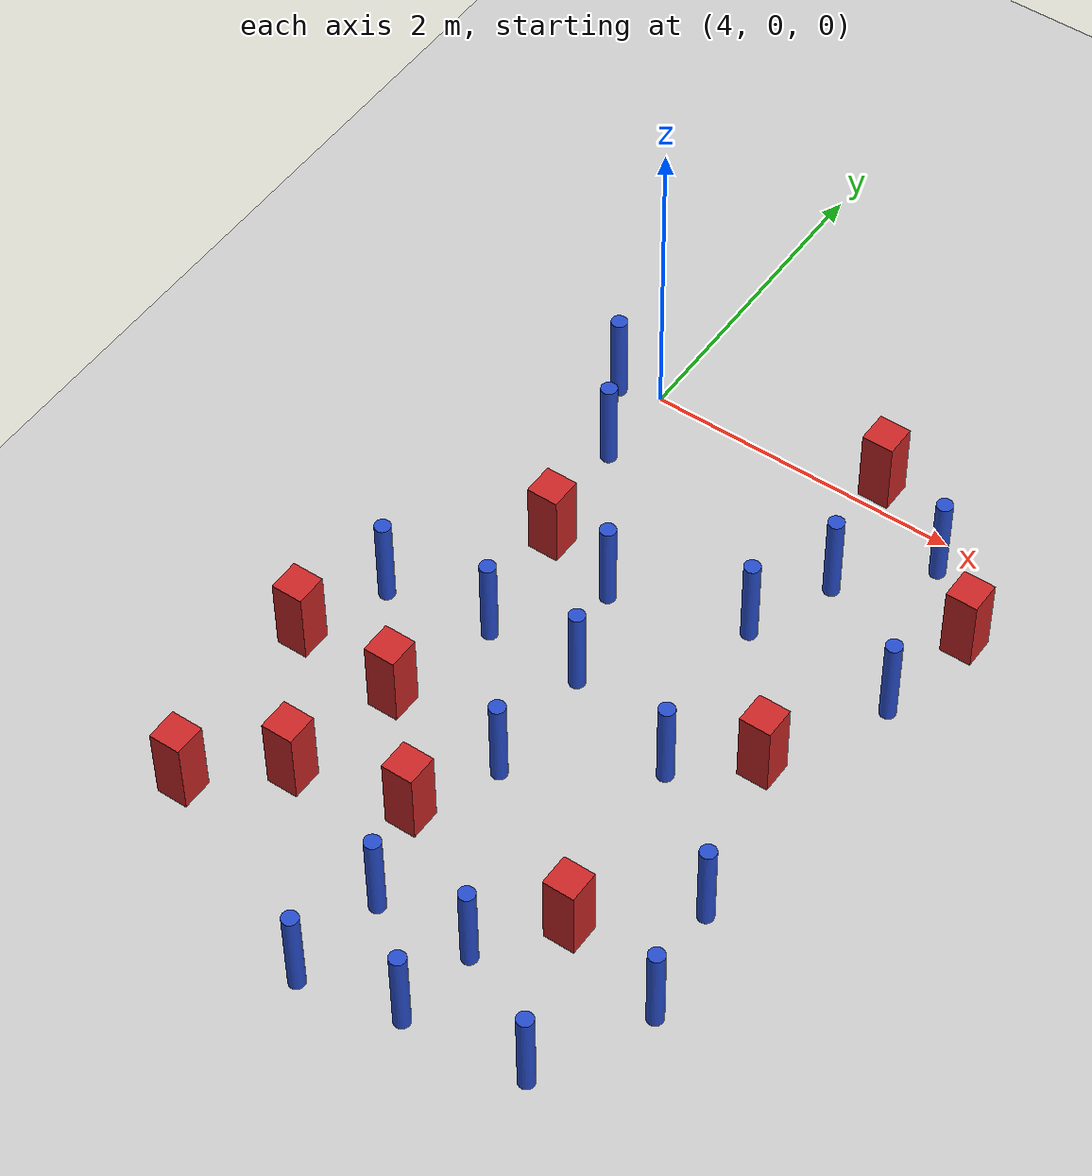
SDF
<sdf version="1.6">
 <world name="default">
  <model name="ground_plane">
   <static>1</static>
   <link name="link">
    <collision name="collision">
     <geometry><plane><normal>0 0 1</normal><size>100 100</size></plane></geometry>
     <surface><friction><ode><mu>100</mu><mu2>50</mu2></ode></friction></surface>
    </collision>
    <visual name="visual">
     <cast_shadows>0</cast_shadows>
     <geometry><plane><normal>0 0 1</normal><size>100 100</size></plane></geometry>
     <material>
      <ambient>1.0 1.0 1.0 1.0</ambient>
      <diffuse>0.8 0.8 0.8 1.0</diffuse>
      <specular>0.01 0.01 0.01 1.000000</specular>
     </material>
    </visual>
   </link>
  </model>
  <model name="pole_obstacle18">
   <static>true</static>
   <pose>4.81392823287 -3.89418730835 7.38925637345e-09 -8.47170692798e-08 1.24976764937e-08 -1.74513093023e-07</pose>
   <link name="link">
    <pose>0 0 0.3 0 -0 0</pose>
    <inertial>
     <mass>1</mass>
     <inertia><ixx>0.145833</ixx><ixy>0</ixy><ixz>0</ixz><iyy>0.145833</iyy><iyz>0</iyz><izz>0.125</izz></inertia>
    </inertial>
    <collision name="collision">
     <geometry><cylinder><radius>0.05</radius><length>.6</length></cylinder></geometry>
    </collision>
    <visual name="visual">
     <geometry><cylinder><radius>0.05</radius><length>.6</length></cylinder></geometry>
     <material>
      <script><name>Gazebo/Blue</name><uri>file://media/materials/scripts/gazebo.material</uri></script>
     </material>
    </visual>
   </link>
  </model>
  <model name="pole_obstacle28">
   <static>true</static>
   <pose>6.43142556251 -3.62551673232 7.38925637345e-09 -8.47170692798e-08 1.24976764937e-08 -1.74513093023e-07</pose>
   <link name="link">
    <pose>0 0 0.3 0 -0 0</pose>
    <inertial>
     <mass>1</mass>
     <inertia><ixx>0.145833</ixx><ixy>0</ixy><ixz>0</ixz><iyy>0.145833</iyy><iyz>0</iyz><izz>0.125</izz></inertia>
    </inertial>
    <collision name="collision">
     <geometry><cylinder><radius>0.05</radius><length>.6</length></cylinder></geometry>
    </collision>
    <visual name="visual">
     <geometry><cylinder><radius>0.05</radius><length>.6</length></cylinder></geometry>
     <material>
      <script><name>Gazebo/Blue</name><uri>file://media/materials/scripts/gazebo.material</uri></script>
     </material>
    </visual>
   </link>
  </model>
  <model name="pole_obstacle52">
   <static>true</static>
   <pose>4.60872668205 -1.43632139247 7.38925637345e-09 -8.471706928e-08 1.24976765134e-08 -1.74513093015e-07</pose>
   <link name="link">
    <pose>0 0 0.3 0 -0 0</pose>
    <inertial>
     <mass>1</mass>
     <inertia><ixx>0.145833</ixx><ixy>0</ixy><ixz>0</ixz><iyy>0.145833</iyy><iyz>0</iyz><izz>0.125</izz></inertia>
    </inertial>
    <collision name="collision">
     <geometry><cylinder><radius>0.05</radius><length>.6</length></cylinder></geometry>
    </collision>
    <visual name="visual">
     <geometry><cylinder><radius>0.05</radius><length>.6</length></cylinder></geometry>
     <material>
      <script><name>Gazebo/Blue</name><uri>file://media/materials/scripts/gazebo.material</uri></script>
     </material>
    </visual>
   </link>
  </model>
  <model name="pole_obstacle62">
   <static>true</static>
   <pose>6.36205542575 -1.22188194844 7.38925637345e-09 -8.471706928e-08 1.24976765134e-08 -1.74513093015e-07</pose>
   <link name="link">
    <pose>0 0 0.3 0 -0 0</pose>
    <inertial>
     <mass>1</mass>
     <inertia><ixx>0.145833</ixx><ixy>0</ixy><ixz>0</ixz><iyy>0.145833</iyy><iyz>0</iyz><izz>0.125</izz></inertia>
    </inertial>
    <collision name="collision">
     <geometry><cylinder><radius>0.05</radius><length>.6</length></cylinder></geometry>
    </collision>
    <visual name="visual">
     <geometry><cylinder><radius>0.05</radius><length>.6</length></cylinder></geometry>
     <material>
      <script><name>Gazebo/Blue</name><uri>file://media/materials/scripts/gazebo.material</uri></script>
     </material>
    </visual>
   </link>
  </model>
  <model name="square_post_obstacle55">
   <static>true</static>
   <pose>5.46670627018 0.142808457622 1.91545236811e-07 -7.35059704564e-06 1.12565212e-07 2.39332434364e-05</pose>
   <link name="link">
    <pose>0 0 0.25 0 -0 0</pose>
    <inertial>
     <mass>100</mass>
     <inertia>
      <ixx>0.166667</ixx>
      <ixy>0</ixy>
      <ixz>0</ixz>
      <iyy>0.166667</iyy>
      <iyz>0</iyz>
      <izz>0.166667</izz>
     </inertia>
    </inertial>
    <collision name="collision"><geometry><box><size>.2 .2 .5</size></box></geometry></collision>
    <visual name="visual">
     <geometry><box><size>.2 .2 .5</size></box></geometry>
     <material>
      <script><name>Gazebo/Red</name><uri>file://media/materials/scripts/gazebo.material</uri></script>
     </material>
    </visual>
   </link>
  </model>
  <model name="pole_obstacle69">
   <static>true</static>
   <pose>4.81837307813 -2.03980980136 7.38925637345e-09 -8.471706928e-08 1.2497676506e-08 -1.74513093017e-07</pose>
   <link name="link">
    <pose>0 0 0.3 0 -0 0</pose>
    <inertial>
     <mass>1</mass>
     <inertia><ixx>0.145833</ixx><ixy>0</ixy><ixz>0</ixz><iyy>0.145833</iyy><iyz>0</iyz><izz>0.125</izz></inertia>
    </inertial>
    <collision name="collision">
     <geometry><cylinder><radius>0.05</radius><length>.6</length></cylinder></geometry>
    </collision>
    <visual name="visual">
     <geometry><cylinder><radius>0.05</radius><length>.6</length></cylinder></geometry>
     <material>
      <script><name>Gazebo/Blue</name><uri>file://media/materials/scripts/gazebo.material</uri></script>
     </material>
    </visual>
   </link>
  </model>
  <model name="square_post_obstacle75">
   <static>true</static>
   <pose>3.91525432647 -3.47301717205 1.91545236811e-07 -7.35059704564e-06 1.12565212e-07 2.39332434364e-05</pose>
   <link name="link">
    <pose>0 0 0.25 0 -0 0</pose>
    <inertial>
     <mass>100</mass>
     <inertia>
      <ixx>0.166667</ixx>
      <ixy>0</ixy>
      <ixz>0</ixz>
      <iyy>0.166667</iyy>
      <iyz>0</iyz>
      <izz>0.166667</izz>
     </inertia>
    </inertial>
    <collision name="collision"><geometry><box><size>.2 .2 .5</size></box></geometry></collision>
    <visual name="visual">
     <geometry><box><size>.2 .2 .5</size></box></geometry>
     <material>
      <script><name>Gazebo/Red</name><uri>file://media/materials/scripts/gazebo.material</uri></script>
     </material>
    </visual>
   </link>
  </model>
  <model name="square_post_obstacle93">
   <static>true</static>
   <pose>4.1162038449 -1.28578636467 1.91545236811e-07 -7.35059704564e-06 1.12565212e-07 2.39332434364e-05</pose>
   <link name="link">
    <pose>0 0 0.25 0 -0 0</pose>
    <inertial>
     <mass>100</mass>
     <inertia>
      <ixx>0.166667</ixx>
      <ixy>0</ixy>
      <ixz>0</ixz>
      <iyy>0.166667</iyy>
      <iyz>0</iyz>
      <izz>0.166667</izz>
     </inertia>
    </inertial>
    <collision name="collision"><geometry><box><size>.2 .2 .5</size></box></geometry></collision>
    <visual name="visual">
     <geometry><box><size>.2 .2 .5</size></box></geometry>
     <material>
      <script><name>Gazebo/Red</name><uri>file://media/materials/scripts/gazebo.material</uri></script>
     </material>
    </visual>
   </link>
  </model>
  <model name="square_post_obstacle96">
   <static>true</static>
   <pose>3.36142323224 -2.67453290748 1.91545236811e-07 -7.35059704564e-06 1.12565212e-07 2.39332434364e-05</pose>
   <link name="link">
    <pose>0 0 0.25 0 -0 0</pose>
    <inertial>
     <mass>100</mass>
     <inertia>
      <ixx>0.166667</ixx>
      <ixy>0</ixy>
      <ixz>0</ixz>
      <iyy>0.166667</iyy>
      <iyz>0</iyz>
      <izz>0.166667</izz>
     </inertia>
    </inertial>
    <collision name="collision"><geometry><box><size>.2 .2 .5</size></box></geometry></collision>
    <visual name="visual">
     <geometry><box><size>.2 .2 .5</size></box></geometry>
     <material>
      <script><name>Gazebo/Red</name><uri>file://media/materials/scripts/gazebo.material</uri></script>
     </material>
    </visual>
   </link>
  </model>
  <model name="pole_obstacle107">
   <static>true</static>
   <pose>5.4116193506 -3.87581239472 7.38925637345e-09 -8.47170692798e-08 1.24976764937e-08 -1.74513093023e-07</pose>
   <link name="link">
    <pose>0 0 0.3 0 -0 0</pose>
    <inertial>
     <mass>1</mass>
     <inertia><ixx>0.145833</ixx><ixy>0</ixy><ixz>0</ixz><iyy>0.145833</iyy><iyz>0</iyz><izz>0.125</izz></inertia>
    </inertial>
    <collision name="collision">
     <geometry><cylinder><radius>0.05</radius><length>.6</length></cylinder></geometry>
    </collision>
    <visual name="visual">
     <geometry><cylinder><radius>0.05</radius><length>.6</length></cylinder></geometry>
     <material>
      <script><name>Gazebo/Blue</name><uri>file://media/materials/scripts/gazebo.material</uri></script>
     </material>
    </visual>
   </link>
  </model>
  <model name="pole_obstacle120">
   <static>true</static>
   <pose>4.83011272026 -2.80245545974 7.38925637345e-09 -8.47170692798e-08 1.24976764937e-08 -1.74513093023e-07</pose>
   <link name="link">
    <pose>0 0 0.3 0 -0 0</pose>
    <inertial>
     <mass>1</mass>
     <inertia><ixx>0.145833</ixx><ixy>0</ixy><ixz>0</ixz><iyy>0.145833</iyy><iyz>0</iyz><izz>0.125</izz></inertia>
    </inertial>
    <collision name="collision">
     <geometry><cylinder><radius>0.05</radius><length>.6</length></cylinder></geometry>
    </collision>
    <visual name="visual">
     <geometry><cylinder><radius>0.05</radius><length>.6</length></cylinder></geometry>
     <material>
      <script><name>Gazebo/Blue</name><uri>file://media/materials/scripts/gazebo.material</uri></script>
     </material>
    </visual>
   </link>
  </model>
  <model name="square_post_obstacle121">
   <static>true</static>
   <pose>5.75012717869 -3.43909623136 1.91545236811e-07 -7.35059704564e-06 1.12565212e-07 2.39332434364e-05</pose>
   <link name="link">
    <pose>0 0 0.25 0 -0 0</pose>
    <inertial>
     <mass>100</mass>
     <inertia>
      <ixx>0.166667</ixx>
      <ixy>0</ixy>
      <ixz>0</ixz>
      <iyy>0.166667</iyy>
      <iyz>0</iyz>
      <izz>0.166667</izz>
     </inertia>
    </inertial>
    <collision name="collision"><geometry><box><size>.2 .2 .5</size></box></geometry></collision>
    <visual name="visual">
     <geometry><box><size>.2 .2 .5</size></box></geometry>
     <material>
      <script><name>Gazebo/Red</name><uri>file://media/materials/scripts/gazebo.material</uri></script>
     </material>
    </visual>
   </link>
  </model>
  <model name="pole_obstacle129">
   <static>true</static>
   <pose>4.75481092513 -4.51975838768 7.38925637345e-09 -8.47170692796e-08 1.24976764786e-08 -1.74513093032e-07</pose>
   <link name="link">
    <pose>0 0 0.3 0 -0 0</pose>
    <inertial>
     <mass>1</mass>
     <inertia><ixx>0.145833</ixx><ixy>0</ixy><ixz>0</ixz><iyy>0.145833</iyy><iyz>0</iyz><izz>0.125</izz></inertia>
    </inertial>
    <collision name="collision">
     <geometry><cylinder><radius>0.05</radius><length>.6</length></cylinder></geometry>
    </collision>
    <visual name="visual">
     <geometry><cylinder><radius>0.05</radius><length>.6</length></cylinder></geometry>
     <material>
      <script><name>Gazebo/Blue</name><uri>file://media/materials/scripts/gazebo.material</uri></script>
     </material>
    </visual>
   </link>
  </model>
  <model name="square_post_obstacle125">
   <static>true</static>
   <pose>4.04993005443 -2.73640748449 1.91545236811e-07 -7.35059704564e-06 1.12565212e-07 2.39332434364e-05</pose>
   <link name="link">
    <pose>0 0 0.25 0 -0 0</pose>
    <inertial>
     <mass>100</mass>
     <inertia>
      <ixx>0.166667</ixx>
      <ixy>0</ixy>
      <ixz>0</ixz>
      <iyy>0.166667</iyy>
      <iyz>0</iyz>
      <izz>0.166667</izz>
     </inertia>
    </inertial>
    <collision name="collision"><geometry><box><size>.2 .2 .5</size></box></geometry></collision>
    <visual name="visual">
     <geometry><box><size>.2 .2 .5</size></box></geometry>
     <material>
      <script><name>Gazebo/Red</name><uri>file://media/materials/scripts/gazebo.material</uri></script>
     </material>
    </visual>
   </link>
  </model>
  <model name="pole_obstacle132">
   <static>true</static>
   <pose>3.55675411654 -2.13776649317 7.38925637345e-09 -8.47170692798e-08 1.24976764939e-08 -1.74513093025e-07</pose>
   <link name="link">
    <pose>0 0 0.3 0 -0 0</pose>
    <inertial>
     <mass>1</mass>
     <inertia><ixx>0.145833</ixx><ixy>0</ixy><ixz>0</ixz><iyy>0.145833</iyy><iyz>0</iyz><izz>0.125</izz></inertia>
    </inertial>
    <collision name="collision">
     <geometry><cylinder><radius>0.05</radius><length>.6</length></cylinder></geometry>
    </collision>
    <visual name="visual">
     <geometry><cylinder><radius>0.05</radius><length>.6</length></cylinder></geometry>
     <material>
      <script><name>Gazebo/Blue</name><uri>file://media/materials/scripts/gazebo.material</uri></script>
     </material>
    </visual>
   </link>
  </model>
  <model name="square_post_obstacle129">
   <static>true</static>
   <pose>6.46682079812 -0.575488577503 1.91545236811e-07 -7.35059704564e-06 1.12565212e-07 2.39332434364e-05</pose>
   <link name="link">
    <pose>0 0 0.25 0 -0 0</pose>
    <inertial>
     <mass>100</mass>
     <inertia>
      <ixx>0.166667</ixx>
      <ixy>0</ixy>
      <ixz>0</ixz>
      <iyy>0.166667</iyy>
      <iyz>0</iyz>
      <izz>0.166667</izz>
     </inertia>
    </inertial>
    <collision name="collision"><geometry><box><size>.2 .2 .5</size></box></geometry></collision>
    <visual name="visual">
     <geometry><box><size>.2 .2 .5</size></box></geometry>
     <material>
      <script><name>Gazebo/Red</name><uri>file://media/materials/scripts/gazebo.material</uri></script>
     </material>
    </visual>
   </link>
  </model>
  <model name="square_post_obstacle139">
   <static>true</static>
   <pose>3.46304212744 -3.87284425612 1.91545236811e-07 -7.35059704564e-06 1.12565212e-07 2.39332434364e-05</pose>
   <link name="link">
    <pose>0 0 0.25 0 -0 0</pose>
    <inertial>
     <mass>100</mass>
     <inertia>
      <ixx>0.166667</ixx>
      <ixy>0</ixy>
      <ixz>0</ixz>
      <iyy>0.166667</iyy>
      <iyz>0</iyz>
      <izz>0.166667</izz>
     </inertia>
    </inertial>
    <collision name="collision"><geometry><box><size>.2 .2 .5</size></box></geometry></collision>
    <visual name="visual">
     <geometry><box><size>.2 .2 .5</size></box></geometry>
     <material>
      <script><name>Gazebo/Red</name><uri>file://media/materials/scripts/gazebo.material</uri></script>
     </material>
    </visual>
   </link>
  </model>
  <model name="pole_obstacle144">
   <static>true</static>
   <pose>4.00464949557 -0.555028928826 7.38925637345e-09 -8.471706928e-08 1.24976765147e-08 -1.74513093015e-07</pose>
   <link name="link">
    <pose>0 0 0.3 0 -0 0</pose>
    <inertial>
     <mass>1</mass>
     <inertia><ixx>0.145833</ixx><ixy>0</ixy><ixz>0</ixz><iyy>0.145833</iyy><iyz>0</iyz><izz>0.125</izz></inertia>
    </inertial>
    <collision name="collision">
     <geometry><cylinder><radius>0.05</radius><length>.6</length></cylinder></geometry>
    </collision>
    <visual name="visual">
     <geometry><cylinder><radius>0.05</radius><length>.6</length></cylinder></geometry>
     <material>
      <script><name>Gazebo/Blue</name><uri>file://media/materials/scripts/gazebo.material</uri></script>
     </material>
    </visual>
   </link>
  </model>
  <model name="pole_obstacle152">
   <static>true</static>
   <pose>3.75185980498 -0.0852785895553 7.38925637345e-09 -8.471706928e-08 1.24976765088e-08 -1.74513093017e-07</pose>
   <link name="link">
    <pose>0 0 0.3 0 -0 0</pose>
    <inertial>
     <mass>1</mass>
     <inertia><ixx>0.145833</ixx><ixy>0</ixy><ixz>0</ixz><iyy>0.145833</iyy><iyz>0</iyz><izz>0.125</izz></inertia>
    </inertial>
    <collision name="collision">
     <geometry><cylinder><radius>0.05</radius><length>.6</length></cylinder></geometry>
    </collision>
    <visual name="visual">
     <geometry><cylinder><radius>0.05</radius><length>.6</length></cylinder></geometry>
     <material>
      <script><name>Gazebo/Blue</name><uri>file://media/materials/scripts/gazebo.material</uri></script>
     </material>
    </visual>
   </link>
  </model>
  <model name="square_post_obstacle162">
   <static>true</static>
   <pose>4.60904931019 -3.31985496098 1.91545236811e-07 -7.35059704564e-06 1.12565212e-07 2.39332434364e-05</pose>
   <link name="link">
    <pose>0 0 0.25 0 -0 0</pose>
    <inertial>
     <mass>100</mass>
     <inertia>
      <ixx>0.166667</ixx>
      <ixy>0</ixy>
      <ixz>0</ixz>
      <iyy>0.166667</iyy>
      <iyz>0</iyz>
      <izz>0.166667</izz>
     </inertia>
    </inertial>
    <collision name="collision"><geometry><box><size>.2 .2 .5</size></box></geometry></collision>
    <visual name="visual">
     <geometry><box><size>.2 .2 .5</size></box></geometry>
     <material>
      <script><name>Gazebo/Red</name><uri>file://media/materials/scripts/gazebo.material</uri></script>
     </material>
    </visual>
   </link>
  </model>
  <model name="pole_obstacle168">
   <static>true</static>
   <pose>6.0608339516 -0.200465016436 7.38925637345e-09 -8.471706928e-08 1.24976765089e-08 -1.74513093017e-07</pose>
   <link name="link">
    <pose>0 0 0.3 0 -0 0</pose>
    <inertial>
     <mass>1</mass>
     <inertia><ixx>0.145833</ixx><ixy>0</ixy><ixz>0</ixz><iyy>0.145833</iyy><iyz>0</iyz><izz>0.125</izz></inertia>
    </inertial>
    <collision name="collision">
     <geometry><cylinder><radius>0.05</radius><length>.6</length></cylinder></geometry>
    </collision>
    <visual name="visual">
     <geometry><cylinder><radius>0.05</radius><length>.6</length></cylinder></geometry>
     <material>
      <script><name>Gazebo/Blue</name><uri>file://media/materials/scripts/gazebo.material</uri></script>
     </material>
    </visual>
   </link>
  </model>
  <model name="square_post_obstacle189">
   <static>true</static>
   <pose>6.00486077138 -1.95846174106 1.91545236811e-07 -7.35059704564e-06 1.12565212e-07 2.39332434364e-05</pose>
   <link name="link">
    <pose>0 0 0.25 0 -0 0</pose>
    <inertial>
     <mass>100</mass>
     <inertia>
      <ixx>0.166667</ixx>
      <ixy>0</ixy>
      <ixz>0</ixz>
      <iyy>0.166667</iyy>
      <iyz>0</iyz>
      <izz>0.166667</izz>
     </inertia>
    </inertial>
    <collision name="collision"><geometry><box><size>.2 .2 .5</size></box></geometry></collision>
    <visual name="visual">
     <geometry><box><size>.2 .2 .5</size></box></geometry>
     <material>
      <script><name>Gazebo/Red</name><uri>file://media/materials/scripts/gazebo.material</uri></script>
     </material>
    </visual>
   </link>
  </model>
  <model name="pole_obstacle191">
   <static>true</static>
   <pose>6.29042569786 -2.94036368673 7.38925637345e-09 -8.47170692798e-08 1.24976764937e-08 -1.74513093023e-07</pose>
   <link name="link">
    <pose>0 0 0.3 0 -0 0</pose>
    <inertial>
     <mass>1</mass>
     <inertia><ixx>0.145833</ixx><ixy>0</ixy><ixz>0</ixz><iyy>0.145833</iyy><iyz>0</iyz><izz>0.125</izz></inertia>
    </inertial>
    <collision name="collision">
     <geometry><cylinder><radius>0.05</radius><length>.6</length></cylinder></geometry>
    </collision>
    <visual name="visual">
     <geometry><cylinder><radius>0.05</radius><length>.6</length></cylinder></geometry>
     <material>
      <script><name>Gazebo/Blue</name><uri>file://media/materials/scripts/gazebo.material</uri></script>
     </material>
    </visual>
   </link>
  </model>
  <model name="pole_obstacle202">
   <static>true</static>
   <pose>5.41929144777 -1.19675685623 7.38925637345e-09 -8.471706928e-08 1.24976765134e-08 -1.74513093015e-07</pose>
   <link name="link">
    <pose>0 0 0.3 0 -0 0</pose>
    <inertial>
     <mass>1</mass>
     <inertia><ixx>0.145833</ixx><ixy>0</ixy><ixz>0</ixz><iyy>0.145833</iyy><iyz>0</iyz><izz>0.125</izz></inertia>
    </inertial>
    <collision name="collision">
     <geometry><cylinder><radius>0.05</radius><length>.6</length></cylinder></geometry>
    </collision>
    <visual name="visual">
     <geometry><cylinder><radius>0.05</radius><length>.6</length></cylinder></geometry>
     <material>
      <script><name>Gazebo/Blue</name><uri>file://media/materials/scripts/gazebo.material</uri></script>
     </material>
    </visual>
   </link>
  </model>
  <model name="pole_obstacle210">
   <static>true</static>
   <pose>6.10340799415 -4.32400878838 7.38925637345e-09 -8.47170692796e-08 1.24976764786e-08 -1.74513093032e-07</pose>
   <link name="link">
    <pose>0 0 0.3 0 -0 0</pose>
    <inertial>
     <mass>1</mass>
     <inertia><ixx>0.145833</ixx><ixy>0</ixy><ixz>0</ixz><iyy>0.145833</iyy><iyz>0</iyz><izz>0.125</izz></inertia>
    </inertial>
    <collision name="collision">
     <geometry><cylinder><radius>0.05</radius><length>.6</length></cylinder></geometry>
    </collision>
    <visual name="visual">
     <geometry><cylinder><radius>0.05</radius><length>.6</length></cylinder></geometry>
     <material>
      <script><name>Gazebo/Blue</name><uri>file://media/materials/scripts/gazebo.material</uri></script>
     </material>
    </visual>
   </link>
  </model>
  <model name="pole_obstacle212">
   <static>true</static>
   <pose>5.35573239636 -4.39843027151 7.38925637345e-09 -8.47170692796e-08 1.24976764786e-08 -1.74513093032e-07</pose>
   <link name="link">
    <pose>0 0 0.3 0 -0 0</pose>
    <inertial>
     <mass>1</mass>
     <inertia><ixx>0.145833</ixx><ixy>0</ixy><ixz>0</ixz><iyy>0.145833</iyy><iyz>0</iyz><izz>0.125</izz></inertia>
    </inertial>
    <collision name="collision">
     <geometry><cylinder><radius>0.05</radius><length>.6</length></cylinder></geometry>
    </collision>
    <visual name="visual">
     <geometry><cylinder><radius>0.05</radius><length>.6</length></cylinder></geometry>
     <material>
      <script><name>Gazebo/Blue</name><uri>file://media/materials/scripts/gazebo.material</uri></script>
     </material>
    </visual>
   </link>
  </model>
  <model name="pole_obstacle213">
   <static>true</static>
   <pose>5.62881732676 -0.658724111898 7.38925637345e-09 -8.47170692799e-08 1.24976765038e-08 -1.74513093018e-07</pose>
   <link name="link">
    <pose>0 0 0.3 0 -0 0</pose>
    <inertial>
     <mass>1</mass>
     <inertia><ixx>0.145833</ixx><ixy>0</ixy><ixz>0</ixz><iyy>0.145833</iyy><iyz>0</iyz><izz>0.125</izz></inertia>
    </inertial>
    <collision name="collision">
     <geometry><cylinder><radius>0.05</radius><length>.6</length></cylinder></geometry>
    </collision>
    <visual name="visual">
     <geometry><cylinder><radius>0.05</radius><length>.6</length></cylinder></geometry>
     <material>
      <script><name>Gazebo/Blue</name><uri>file://media/materials/scripts/gazebo.material</uri></script>
     </material>
    </visual>
   </link>
  </model>
  <model name="pole_obstacle234">
   <static>true</static>
   <pose>4.21152000957 -2.03823997922 7.38925637345e-09 -8.471706928e-08 1.2497676506e-08 -1.74513093017e-07</pose>
   <link name="link">
    <pose>0 0 0.3 0 -0 0</pose>
    <inertial>
     <mass>1</mass>
     <inertia><ixx>0.145833</ixx><ixy>0</ixy><ixz>0</ixz><iyy>0.145833</iyy><iyz>0</iyz><izz>0.125</izz></inertia>
    </inertial>
    <collision name="collision">
     <geometry><cylinder><radius>0.05</radius><length>.6</length></cylinder></geometry>
    </collision>
    <visual name="visual">
     <geometry><cylinder><radius>0.05</radius><length>.6</length></cylinder></geometry>
     <material>
      <script><name>Gazebo/Blue</name><uri>file://media/materials/scripts/gazebo.material</uri></script>
     </material>
    </visual>
   </link>
  </model>
  <model name="pole_obstacle241">
   <static>true</static>
   <pose>5.58895000957 -2.29183997922 7.38925637345e-09 -8.47170692799e-08 1.24976765028e-08 -1.74513093019e-07</pose>
   <link name="link">
    <pose>0 0 0.3 0 -0 0</pose>
    <inertial>
     <mass>1</mass>
     <inertia><ixx>0.145833</ixx><ixy>0</ixy><ixz>0</ixz><iyy>0.145833</iyy><iyz>0</iyz><izz>0.125</izz></inertia>
    </inertial>
    <collision name="collision">
     <geometry><cylinder><radius>0.05</radius><length>.6</length></cylinder></geometry>
    </collision>
    <visual name="visual">
     <geometry><cylinder><radius>0.05</radius><length>.6</length></cylinder></geometry>
     <material>
      <script><name>Gazebo/Blue</name><uri>file://media/materials/scripts/gazebo.material</uri></script>
     </material>
    </visual>
   </link>
  </model>
 </world>
</sdf>
